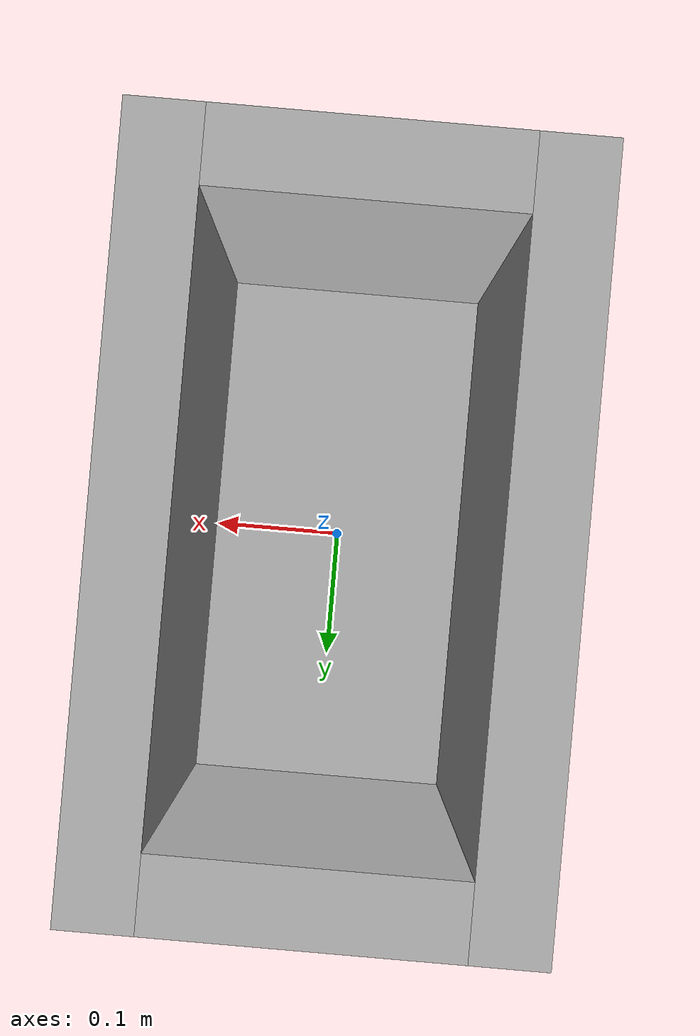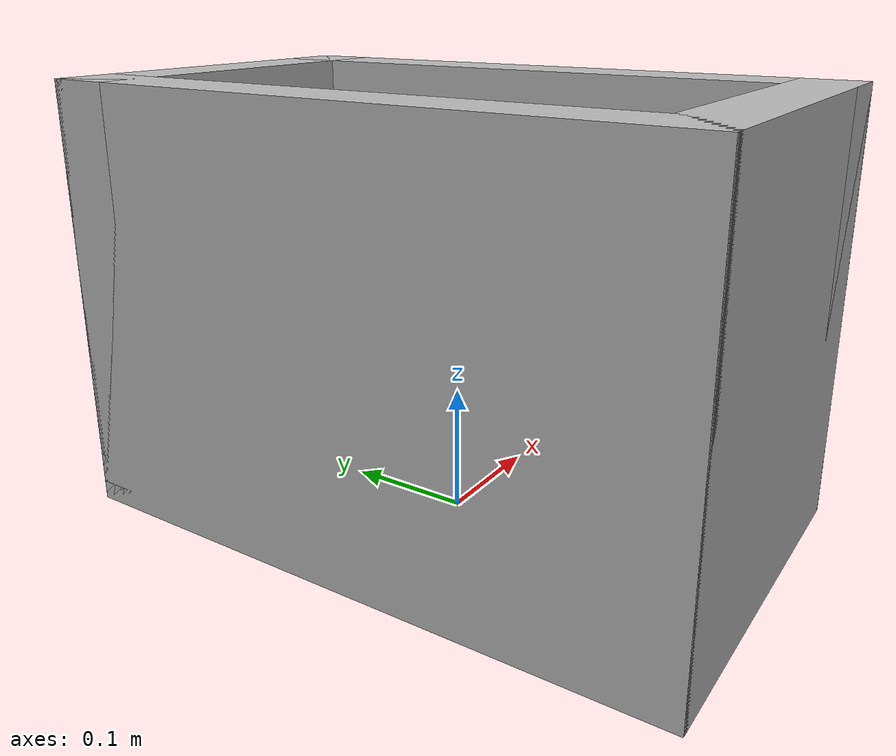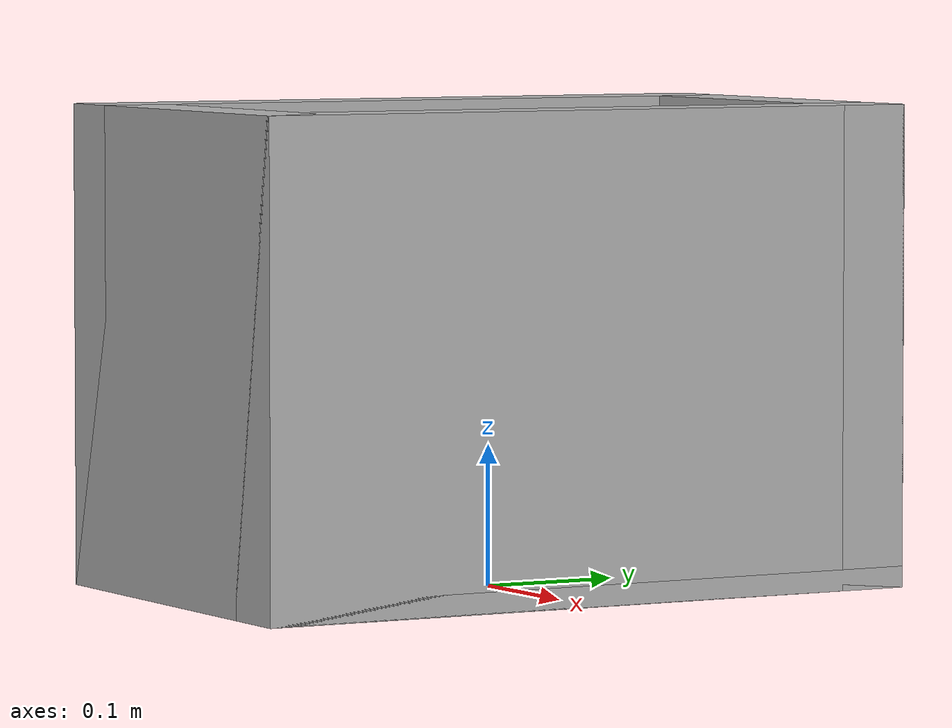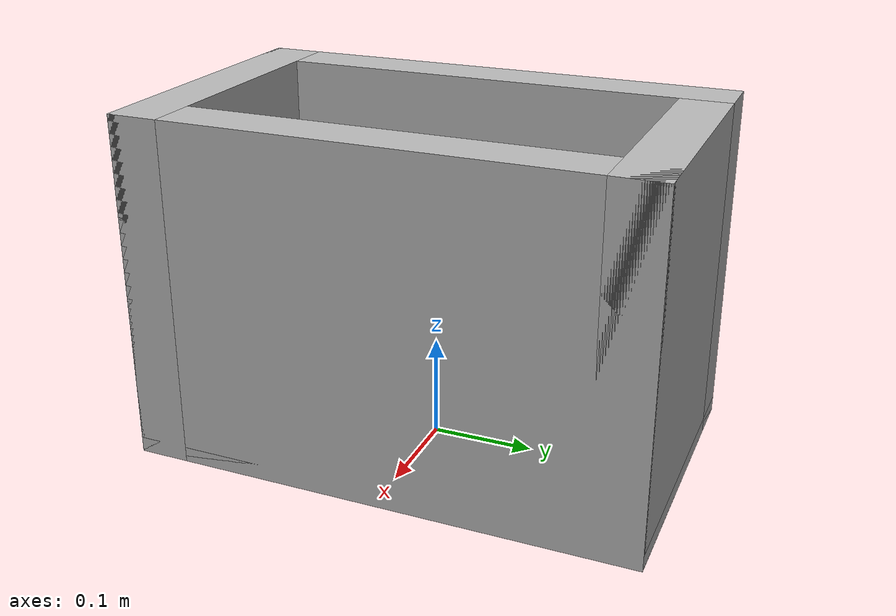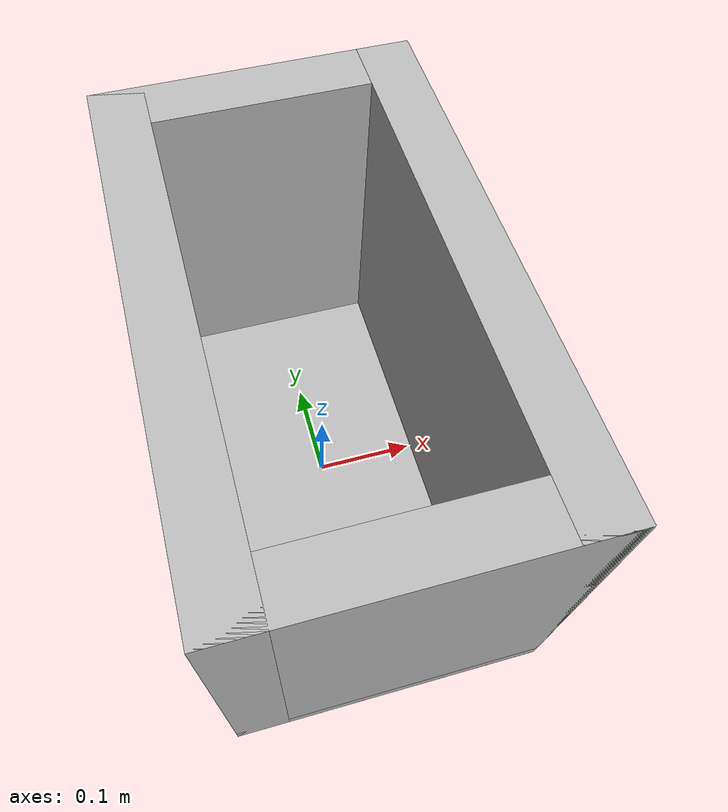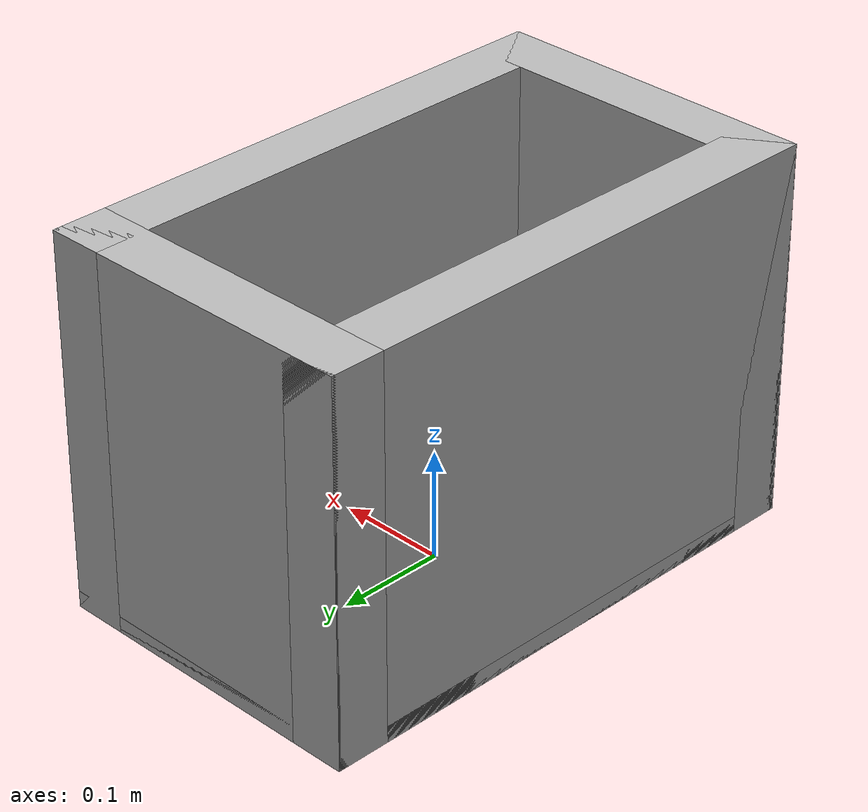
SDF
<?xml version="1.0"?>
<sdf version="1.7">
  <model name="bin_model">
    <!--
    Axes:
      +X - Pointing towards front (slope)
      +Y - Pointing to left side
      +Z - Up
    Origin:
      (0, 0, 0) at the center bottom of the bin
    -->
    <link name="bin_base">
      <inertial>
        <mass>18.70</mass>
        <inertia>
          <ixx>0.79</ixx>
          <ixy>0</ixy>
          <ixz>0</ixz>
          <iyy>0.53</iyy>
          <iyz>0</iyz>
          <izz>1.2</izz>
        </inertia>
      </inertial>
      <visual name="front">
        <pose>0.125 0 0.17 0 0 0</pose>
        <geometry>
          <box>
            <size>0.05 0.5 0.34</size>
          </box>
        </geometry>
      </visual>
      <collision name="front">
        <pose>0.125 0 0.17 0 0 0</pose>
        <geometry>
          <box>
            <size>0.05 0.5 0.34</size>
          </box>
        </geometry>
        <drake:proximity_properties>
          <drake:mu_dynamic>0.</drake:mu_dynamic>
          <drake:mu_static>0.</drake:mu_static>
          <drake:mesh_resolution_hint>0.02</drake:mesh_resolution_hint>
          <drake:elastic_modulus>1e8</drake:elastic_modulus>
          <drake:hunt_crossley_dissipation>5.0</drake:hunt_crossley_dissipation>
          <drake:rigid_hydroelastic/>
        </drake:proximity_properties>
      </collision>
      <visual name="back">
        <pose>-0.125 0 0.17 0 0 0</pose>
        <geometry>
          <box>
            <size>0.05 0.5 0.34</size>
          </box>
        </geometry>
      </visual>
      <collision name="back">
        <pose>-0.125 0 0.17 0 0 0</pose>
        <geometry>
          <box>
            <size>0.05 0.5 0.34</size>
          </box>
        </geometry>
        <drake:proximity_properties>
          <drake:mu_dynamic>0.</drake:mu_dynamic>
          <drake:mu_static>0.</drake:mu_static>
          <drake:mesh_resolution_hint>0.02</drake:mesh_resolution_hint>
          <drake:elastic_modulus>1e8</drake:elastic_modulus>
          <drake:hunt_crossley_dissipation>5.0</drake:hunt_crossley_dissipation>
          <drake:rigid_hydroelastic/>
        </drake:proximity_properties>
      </collision>
      <visual name="left">
        <pose>0 0.225 0.17 0 0 0</pose>
        <geometry>
          <box>
            <size>0.3 0.05 0.34</size>
          </box>
        </geometry>
      </visual>
      <collision name="left">
        <pose>0 0.225 0.17 0 0 0</pose>
        <geometry>
          <box>
            <size>0.3 0.05 0.34</size>
          </box>
        </geometry>
        <drake:proximity_properties>
          <drake:mu_dynamic>0.</drake:mu_dynamic>
          <drake:mu_static>0.</drake:mu_static>
          <drake:mesh_resolution_hint>0.02</drake:mesh_resolution_hint>
          <drake:elastic_modulus>1e8</drake:elastic_modulus>
          <drake:hunt_crossley_dissipation>5.0</drake:hunt_crossley_dissipation>
          <drake:rigid_hydroelastic/>
        </drake:proximity_properties>
      </collision>
      <visual name="right">
        <pose>0 -0.225 0.17 0 0 0</pose>
        <geometry>
          <box>
            <size>0.3 0.05 0.34</size>
          </box>
        </geometry>
      </visual>
      <collision name="right">
        <pose>0 -0.225 0.17 0 0 0</pose>
        <geometry>
          <box>
            <size>0.3 0.05 0.34</size>
          </box>
        </geometry>
        <drake:proximity_properties>
          <drake:mu_dynamic>0.</drake:mu_dynamic>
          <drake:mu_static>0.</drake:mu_static>
          <drake:mesh_resolution_hint>0.02</drake:mesh_resolution_hint>
          <drake:elastic_modulus>1e8</drake:elastic_modulus>
          <drake:hunt_crossley_dissipation>5.0</drake:hunt_crossley_dissipation>
          <drake:rigid_hydroelastic/>
        </drake:proximity_properties>
      </collision>
      <visual name="bottom">
        <pose>0.0 0.0 0.0075 0 0 0</pose>
        <geometry>
          <box>
            <size>0.3 0.5 0.015</size>
          </box>
        </geometry>
      </visual>
      <collision name="bottom">
        <pose>0.0 0.0 0.0075 0 0 0</pose>
        <geometry>
          <box>
            <size>0.3 0.5 0.015</size>
          </box>
        </geometry>
        <drake:proximity_properties>
          <drake:mu_dynamic>0.5</drake:mu_dynamic>
          <drake:mu_static>0.5</drake:mu_static>
          <drake:mesh_resolution_hint>0.02</drake:mesh_resolution_hint>
          <drake:elastic_modulus>1e8</drake:elastic_modulus>
          <drake:hunt_crossley_dissipation>5.0</drake:hunt_crossley_dissipation>
          <drake:rigid_hydroelastic/>
        </drake:proximity_properties>
      </collision>
    </link>
    <frame name="bin_front_top_center">
      <pose relative_to="bin_base">0.22 0 0.21 0 0 0</pose>
    </frame>
  </model>
</sdf>
